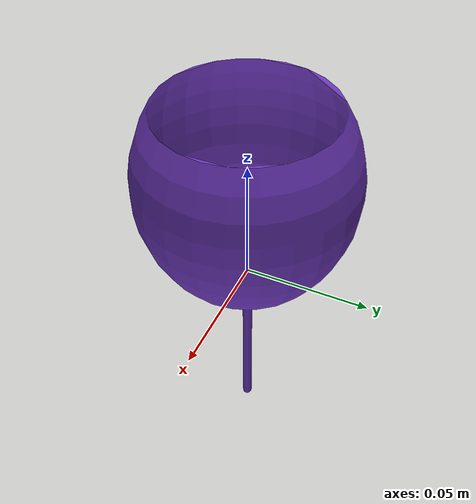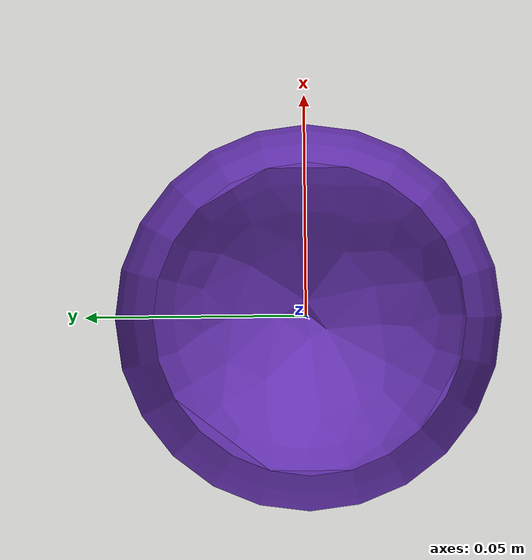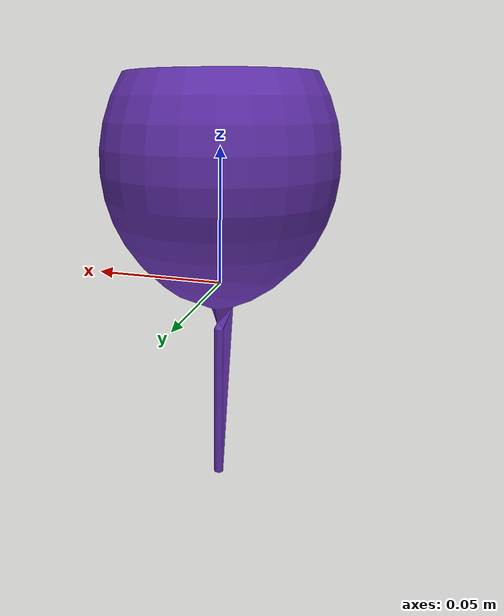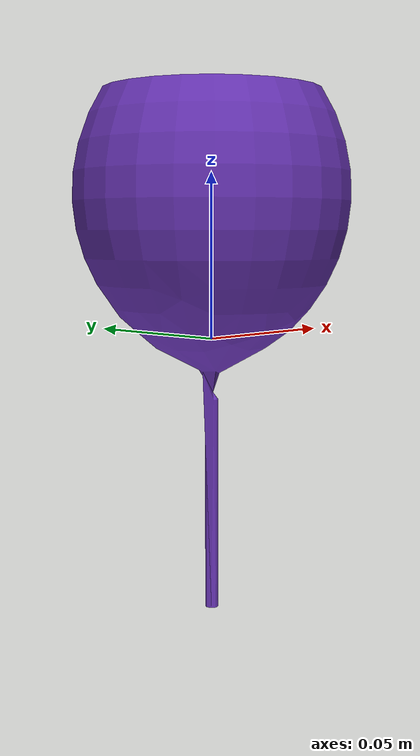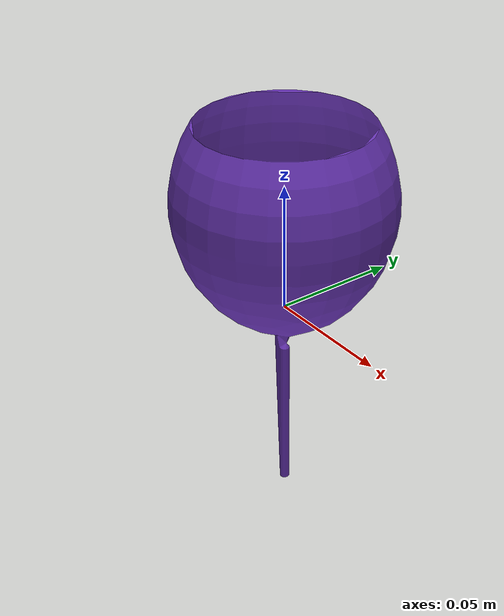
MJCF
<mujoco model="top_watertight_tiny">
  <default>
    <default group="2" type="mesh" contype="0" conaffinity="0">
      <geom group="2" type="mesh" contype="0" conaffinity="0"/>
    </default>
    <default group="3" type="mesh">
      <geom group="3" type="mesh"/>
    </default>
  </default>
  <asset>
    <mesh file="top_watertight_tiny.obj"/>
    <mesh file="top_watertight_tiny_collision_0.obj"/>
    <mesh file="top_watertight_tiny_collision_1.obj"/>
    <mesh file="top_watertight_tiny_collision_2.obj"/>
    <mesh file="top_watertight_tiny_collision_3.obj"/>
    <mesh file="top_watertight_tiny_collision_4.obj"/>
    <mesh file="top_watertight_tiny_collision_5.obj"/>
    <mesh file="top_watertight_tiny_collision_6.obj"/>
    <mesh file="top_watertight_tiny_collision_7.obj"/>
    <mesh file="top_watertight_tiny_collision_8.obj"/>
    <mesh file="top_watertight_tiny_collision_9.obj"/>
    <mesh file="top_watertight_tiny_collision_10.obj"/>
    <mesh file="top_watertight_tiny_collision_11.obj"/>
    <mesh file="top_watertight_tiny_collision_12.obj"/>
    <mesh file="top_watertight_tiny_collision_13.obj"/>
    <mesh file="top_watertight_tiny_collision_14.obj"/>
    <mesh file="top_watertight_tiny_collision_15.obj"/>
    <mesh file="top_watertight_tiny_collision_16.obj"/>
    <mesh file="top_watertight_tiny_collision_17.obj"/>
    <mesh file="top_watertight_tiny_collision_18.obj"/>
    <mesh file="top_watertight_tiny_collision_19.obj"/>
    <mesh file="top_watertight_tiny_collision_20.obj"/>
    <mesh file="top_watertight_tiny_collision_21.obj"/>
    <mesh file="top_watertight_tiny_collision_22.obj"/>
    <mesh file="top_watertight_tiny_collision_23.obj"/>
    <mesh file="top_watertight_tiny_collision_24.obj"/>
    <mesh file="top_watertight_tiny_collision_25.obj"/>
    <mesh file="top_watertight_tiny_collision_26.obj"/>
    <mesh file="top_watertight_tiny_collision_27.obj"/>
    <mesh file="top_watertight_tiny_collision_28.obj"/>
    <mesh file="top_watertight_tiny_collision_29.obj"/>
    <mesh file="top_watertight_tiny_collision_30.obj"/>
    <mesh file="top_watertight_tiny_collision_31.obj"/>
    <mesh file="top_watertight_tiny_collision_32.obj"/>
    <mesh file="top_watertight_tiny_collision_33.obj"/>
    <mesh file="top_watertight_tiny_collision_34.obj"/>
    <mesh file="top_watertight_tiny_collision_35.obj"/>
    <mesh file="top_watertight_tiny_collision_36.obj"/>
    <mesh file="top_watertight_tiny_collision_37.obj"/>
    <mesh file="top_watertight_tiny_collision_38.obj"/>
    <mesh file="top_watertight_tiny_collision_39.obj"/>
    <mesh file="top_watertight_tiny_collision_40.obj"/>
    <mesh file="top_watertight_tiny_collision_41.obj"/>
    <mesh file="top_watertight_tiny_collision_42.obj"/>
    <mesh file="top_watertight_tiny_collision_43.obj"/>
    <mesh file="top_watertight_tiny_collision_44.obj"/>
    <mesh file="top_watertight_tiny_collision_45.obj"/>
    <mesh file="top_watertight_tiny_collision_46.obj"/>
    <mesh file="top_watertight_tiny_collision_47.obj"/>
  </asset>
  <worldbody>
    <body name="top_watertight_tiny">
      <freejoint/>
      <geom mesh="top_watertight_tiny" group="2" type="mesh" rgba="0.4 0.2 0.7 1" contype="0" conaffinity="0"/>
      <geom mesh="top_watertight_tiny_collision_0" rgba="0.27174687507767814 0.25525429966086544 0.011466716100495766 1" group="3" type="mesh"/>
      <geom mesh="top_watertight_tiny_collision_1" rgba="0.5886936974371495 0.8286478331840326 0.17761828128501433 1" group="3" type="mesh"/>
      <geom mesh="top_watertight_tiny_collision_2" rgba="0.8079929968930483 0.4128477367801249 0.30505723281162844 1" group="3" type="mesh"/>
      <geom mesh="top_watertight_tiny_collision_3" rgba="0.498142437937355 0.003507915880225587 0.6560245531683557 1" group="3" type="mesh"/>
      <geom mesh="top_watertight_tiny_collision_4" rgba="0.3245194121393966 0.25930568123039444 0.37819201470017294 1" group="3" type="mesh"/>
      <geom mesh="top_watertight_tiny_collision_5" rgba="0.1272394104975244 0.6450803490830566 0.27896725934211464 1" group="3" type="mesh"/>
      <geom mesh="top_watertight_tiny_collision_6" rgba="0.9750239219236347 0.6578369886750328 0.512420395237235 1" group="3" type="mesh"/>
      <geom mesh="top_watertight_tiny_collision_7" rgba="0.21636289025353028 0.34211815812963153 0.06243215707935301 1" group="3" type="mesh"/>
      <geom mesh="top_watertight_tiny_collision_8" rgba="0.6884511824603289 0.16262796724640738 0.5717948777335069 1" group="3" type="mesh"/>
      <geom mesh="top_watertight_tiny_collision_9" rgba="0.12398462574502567 0.9182504045831996 0.2568660273747839 1" group="3" type="mesh"/>
      <geom mesh="top_watertight_tiny_collision_10" rgba="0.7433150653202899 0.06479681126993608 0.2450633379981627 1" group="3" type="mesh"/>
      <geom mesh="top_watertight_tiny_collision_11" rgba="0.4848265745650385 0.39195033231874954 0.8383948009052675 1" group="3" type="mesh"/>
      <geom mesh="top_watertight_tiny_collision_12" rgba="0.5381660796760038 0.9209465817562614 0.905212603679398 1" group="3" type="mesh"/>
      <geom mesh="top_watertight_tiny_collision_13" rgba="0.7578854108265428 0.888851326570936 0.9216587568445124 1" group="3" type="mesh"/>
      <geom mesh="top_watertight_tiny_collision_14" rgba="0.2813113678026854 0.46963556760850567 0.5724011037994001 1" group="3" type="mesh"/>
      <geom mesh="top_watertight_tiny_collision_15" rgba="0.9022965444032377 0.3582375140769447 0.7739337211462434 1" group="3" type="mesh"/>
      <geom mesh="top_watertight_tiny_collision_16" rgba="0.27404042334380685 0.4995910430662378 0.9172668123886953 1" group="3" type="mesh"/>
      <geom mesh="top_watertight_tiny_collision_17" rgba="0.19189322781690943 0.10079888027570061 0.03642325325735318 1" group="3" type="mesh"/>
      <geom mesh="top_watertight_tiny_collision_18" rgba="0.44271360591460407 0.9786822935981968 0.7995823798979971 1" group="3" type="mesh"/>
      <geom mesh="top_watertight_tiny_collision_19" rgba="0.6305921590549886 0.6403022576623734 0.2760570012423009 1" group="3" type="mesh"/>
      <geom mesh="top_watertight_tiny_collision_20" rgba="0.5655531696227792 0.27426558077833885 0.4923651193624504 1" group="3" type="mesh"/>
      <geom mesh="top_watertight_tiny_collision_21" rgba="0.48350235905931227 0.6293318272273468 0.5625192319924264 1" group="3" type="mesh"/>
      <geom mesh="top_watertight_tiny_collision_22" rgba="0.8598387841628969 0.7255068386004359 0.35537803686197555 1" group="3" type="mesh"/>
      <geom mesh="top_watertight_tiny_collision_23" rgba="0.025772155864397517 0.745247480743584 0.8335743290675207 1" group="3" type="mesh"/>
      <geom mesh="top_watertight_tiny_collision_24" rgba="0.13874872688346407 0.6691621065171307 0.9585795272215143 1" group="3" type="mesh"/>
      <geom mesh="top_watertight_tiny_collision_25" rgba="0.49944950885582406 0.32846713866869626 0.7823685338079104 1" group="3" type="mesh"/>
      <geom mesh="top_watertight_tiny_collision_26" rgba="0.13795994991454652 0.32197935554063695 0.36496219172020905 1" group="3" type="mesh"/>
      <geom mesh="top_watertight_tiny_collision_27" rgba="0.7222778313757108 0.6082017783301289 0.7632719968130466 1" group="3" type="mesh"/>
      <geom mesh="top_watertight_tiny_collision_28" rgba="0.8171904083769654 0.017420359955688913 0.699800335913056 1" group="3" type="mesh"/>
      <geom mesh="top_watertight_tiny_collision_29" rgba="0.07363457247397731 0.17715726927039388 0.6523071509635934 1" group="3" type="mesh"/>
      <geom mesh="top_watertight_tiny_collision_30" rgba="0.7742217805876465 0.8157655111581521 0.22784672645524384 1" group="3" type="mesh"/>
      <geom mesh="top_watertight_tiny_collision_31" rgba="0.29312567919342936 0.4735644447664199 0.871379499227939 1" group="3" type="mesh"/>
      <geom mesh="top_watertight_tiny_collision_32" rgba="0.9123097844642485 0.14620107966245144 0.2508009104883071 1" group="3" type="mesh"/>
      <geom mesh="top_watertight_tiny_collision_33" rgba="0.22407418733805773 0.5179403404646259 0.10408278129721671 1" group="3" type="mesh"/>
      <geom mesh="top_watertight_tiny_collision_34" rgba="0.9409086295287237 0.2352707573284213 0.6323519452480681 1" group="3" type="mesh"/>
      <geom mesh="top_watertight_tiny_collision_35" rgba="0.2363133079016747 0.3081462066143512 0.6261281752558389 1" group="3" type="mesh"/>
      <geom mesh="top_watertight_tiny_collision_36" rgba="0.47736211872330503 0.6305713251646968 0.4732454956108344 1" group="3" type="mesh"/>
      <geom mesh="top_watertight_tiny_collision_37" rgba="0.4959752319325651 0.27848194141755556 0.14671686373007287 1" group="3" type="mesh"/>
      <geom mesh="top_watertight_tiny_collision_38" rgba="0.6094370522427547 0.7394528551630183 0.6399617158244156 1" group="3" type="mesh"/>
      <geom mesh="top_watertight_tiny_collision_39" rgba="0.5682305025032698 0.6681275110911301 0.9893241166582936 1" group="3" type="mesh"/>
      <geom mesh="top_watertight_tiny_collision_40" rgba="0.8867912668700139 0.9303661339135821 0.2342844968453942 1" group="3" type="mesh"/>
      <geom mesh="top_watertight_tiny_collision_41" rgba="0.05578226966177979 0.3549393177553808 0.6450229128909892 1" group="3" type="mesh"/>
      <geom mesh="top_watertight_tiny_collision_42" rgba="0.4822118816261216 0.11896233106329879 0.3401000903359378 1" group="3" type="mesh"/>
      <geom mesh="top_watertight_tiny_collision_43" rgba="0.11930600859926976 0.07798453824899831 0.4264670622643112 1" group="3" type="mesh"/>
      <geom mesh="top_watertight_tiny_collision_44" rgba="0.10286869534446141 0.7374387571225643 0.21490624942722247 1" group="3" type="mesh"/>
      <geom mesh="top_watertight_tiny_collision_45" rgba="0.3667602042354636 0.684414364093811 0.8283883741943636 1" group="3" type="mesh"/>
      <geom mesh="top_watertight_tiny_collision_46" rgba="0.5008868706519959 0.9575228609107868 0.24675875298202676 1" group="3" type="mesh"/>
      <geom mesh="top_watertight_tiny_collision_47" rgba="0.40480635683300836 0.4685772344834307 0.5109664527128615 1" group="3" type="mesh"/>
    </body>
  </worldbody>
</mujoco>
